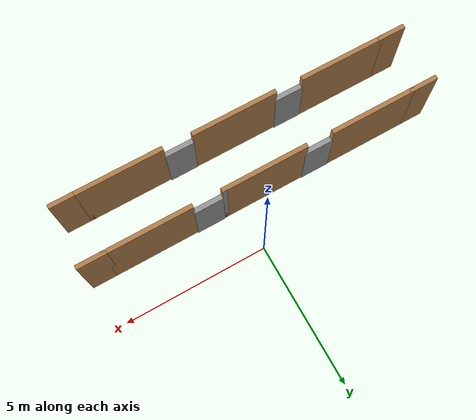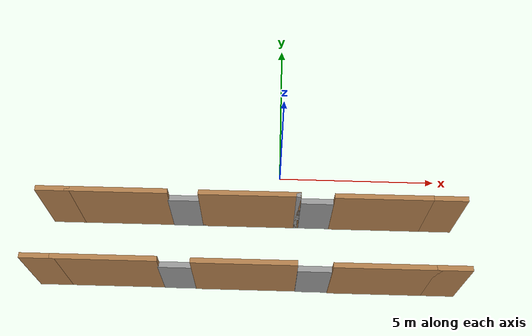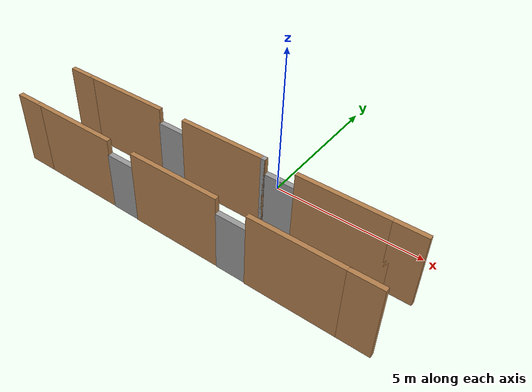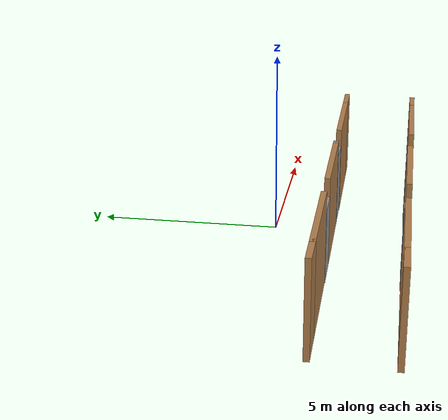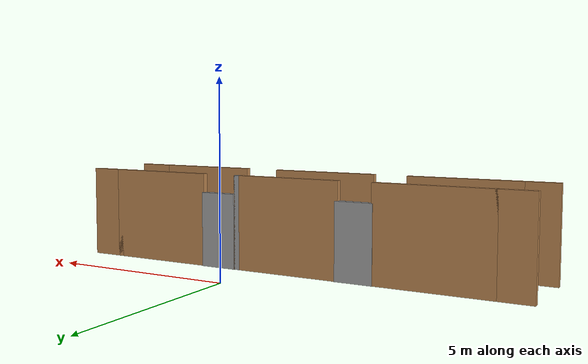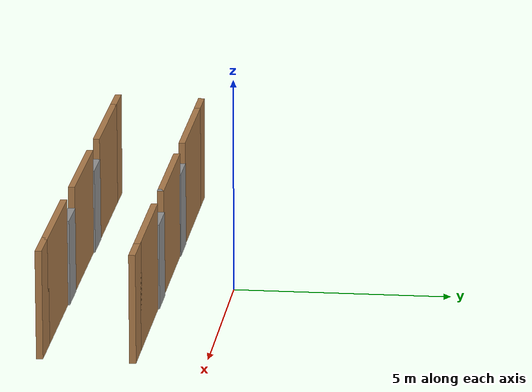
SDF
<?xml version='1.0'?>
<sdf version='1.6'>
  <model name='corridor_symetric'>
    <pose frame=''>-0.925 -2.65 0 0 -0 0</pose>
    <link name='Door_0'>
      <collision name='Door_0_Collision'>
        <geometry>
          <box>
            <size>1 0.17 2</size>
          </box>
        </geometry>
        <pose frame=''>0 0 1 0 -0 0</pose>
      </collision>
      <visual name='Door_0_Visual'>
        <pose frame=''>0 0 1 0 -0 0</pose>
        <geometry>
          <box>
            <size>1 0.17 2</size>
          </box>
        </geometry>
        <material>
          <script>
            <uri>file://media/materials/scripts/gazebo.material</uri>
            <name>Gazebo/Grey</name>
          </script>
        </material>
      </visual>
      <pose frame=''>-1.905 1.05 0 0 -0 0</pose>
    </link>
    <link name='Door_1'>
      <collision name='Door_1_Collision'>
        <geometry>
          <box>
            <size>1 0.17 2</size>
          </box>
        </geometry>
        <pose frame=''>0 0 1 0 -0 0</pose>
      </collision>
      <visual name='Door_1_Visual'>
        <pose frame=''>0 0 1 0 -0 0</pose>
        <geometry>
          <box>
            <size>1 0.17 2</size>
          </box>
        </geometry>
        <material>
          <script>
            <uri>file://media/materials/scripts/gazebo.material</uri>
            <name>Gazebo/Grey</name>
          </script>
        </material>
      </visual>
      <pose frame=''>2.025 1.05 0 0 -0 0</pose>
    </link>
    <link name='Door_2'>
      <collision name='Door_2_Collision'>
        <geometry>
          <box>
            <size>1 0.17 2</size>
          </box>
        </geometry>
        <pose frame=''>0 0 1 0 -0 0</pose>
      </collision>
      <visual name='Door_2_Visual'>
        <pose frame=''>0 0 1 0 -0 0</pose>
        <geometry>
          <box>
            <size>1 0.17 2</size>
          </box>
        </geometry>
        <material>
          <script>
            <uri>file://media/materials/scripts/gazebo.material</uri>
            <name>Gazebo/Grey</name>
          </script>
        </material>
      </visual>
      <pose frame=''>-2.025 -1 0 0 -0 0</pose>
    </link>
    <link name='Door_3'>
      <collision name='Door_3_Collision'>
        <geometry>
          <box>
            <size>1 0.17 2</size>
          </box>
        </geometry>
        <pose frame=''>0 0 1 0 -0 0</pose>
      </collision>
      <visual name='Door_3_Visual'>
        <pose frame=''>0 0 1 0 -0 0</pose>
        <geometry>
          <box>
            <size>1 0.17 2</size>
          </box>
        </geometry>
        <material>
          <script>
            <uri>file://media/materials/scripts/gazebo.material</uri>
            <name>Gazebo/Grey</name>
          </script>
        </material>
      </visual>
      <pose frame=''>1.935 -1.02 0 0 -0 0</pose>
    </link>
    <link name='Wall_0'>
      <collision name='Wall_0_Collision'>
        <geometry>
          <box>
            <size>3 0.15 2.5</size>
          </box>
        </geometry>
        <pose frame=''>0 0 1.25 0 -0 0</pose>
      </collision>
      <visual name='Wall_0_Visual'>
        <pose frame=''>0 0 1.25 0 -0 0</pose>
        <geometry>
          <box>
            <size>3 0.15 2.5</size>
          </box>
        </geometry>
        <material>
          <script>
            <uri>file://media/materials/scripts/gazebo.material</uri>
            <name>Gazebo/Wood</name>
          </script>
          <ambient>1 1 1 1</ambient>
        </material>
        <meta>
          <layer>0</layer>
        </meta>
      </visual>
      <pose frame=''>-3.87 1.05 0 0 -0 0</pose>
    </link>
    <link name='Wall_11'>
      <collision name='Wall_11_Collision'>
        <geometry>
          <box>
            <size>3 0.15 2.5</size>
          </box>
        </geometry>
        <pose frame=''>0 0 1.25 0 -0 0</pose>
      </collision>
      <visual name='Wall_11_Visual'>
        <pose frame=''>0 0 1.25 0 -0 0</pose>
        <geometry>
          <box>
            <size>3 0.15 2.5</size>
          </box>
        </geometry>
        <material>
          <script>
            <uri>file://media/materials/scripts/gazebo.material</uri>
            <name>Gazebo/Wood</name>
          </script>
          <ambient>1 1 1 1</ambient>
        </material>
        <meta>
          <layer>0</layer>
        </meta>
      </visual>
      <pose frame=''>-0.07 -1.02 0 0 -0 0</pose>
    </link>
    <link name='Wall_14'>
      <collision name='Wall_14_Collision'>
        <geometry>
          <box>
            <size>3 0.15 2.5</size>
          </box>
        </geometry>
        <pose frame=''>0 0 1.25 0 -0 0</pose>
      </collision>
      <visual name='Wall_14_Visual'>
        <pose frame=''>0 0 1.25 0 -0 0</pose>
        <geometry>
          <box>
            <size>3 0.15 2.5</size>
          </box>
        </geometry>
        <material>
          <script>
            <uri>file://media/materials/scripts/gazebo.material</uri>
            <name>Gazebo/Wood</name>
          </script>
          <ambient>1 1 1 1</ambient>
        </material>
        <meta>
          <layer>0</layer>
        </meta>
      </visual>
      <pose frame=''>3.91 -1.05 0 0 -0 0</pose>
    </link>
    <link name='Wall_2'>
      <collision name='Wall_2_Collision'>
        <geometry>
          <box>
            <size>3 0.15 2.5</size>
          </box>
        </geometry>
        <pose frame=''>0 0 1.25 0 -0 0</pose>
      </collision>
      <visual name='Wall_2_Visual'>
        <pose frame=''>0 0 1.25 0 -0 0</pose>
        <geometry>
          <box>
            <size>3 0.15 2.5</size>
          </box>
        </geometry>
        <material>
          <script>
            <uri>file://media/materials/scripts/gazebo.material</uri>
            <name>Gazebo/Wood</name>
          </script>
          <ambient>1 1 1 1</ambient>
        </material>
        <meta>
          <layer>0</layer>
        </meta>
      </visual>
      <pose frame=''>0.02 1.04 0 0 -0 0</pose>
    </link>
    <link name='Wall_22'>
      <collision name='Wall_22_Collision'>
        <geometry>
          <box>
            <size>1 0.15 2.5</size>
          </box>
        </geometry>
        <pose frame=''>0 0 1.25 0 -0 0</pose>
      </collision>
      <visual name='Wall_22_Visual'>
        <pose frame=''>0 0 1.25 0 -0 0</pose>
        <geometry>
          <box>
            <size>1 0.15 2.5</size>
          </box>
        </geometry>
        <material>
          <script>
            <uri>file://media/materials/scripts/gazebo.material</uri>
            <name>Gazebo/Wood</name>
          </script>
          <ambient>1 1 1 1</ambient>
        </material>
        <meta>
          <layer>0</layer>
        </meta>
      </visual>
      <pose frame=''>5.84 1.03 0 0 -0 0</pose>
    </link>
    <link name='Wall_3'>
      <collision name='Wall_3_Collision'>
        <geometry>
          <box>
            <size>0.15 0.15 2.5</size>
          </box>
        </geometry>
        <pose frame=''>0 0 1.25 0 -0 0</pose>
      </collision>
      <visual name='Wall_3_Visual'>
        <pose frame=''>0 0 1.25 0 -0 0</pose>
        <geometry>
          <box>
            <size>0.15 0.15 2.5</size>
          </box>
        </geometry>
        <material>
          <script>
            <uri>file://media/materials/scripts/gazebo.material</uri>
            <name>Gazebo/Grey</name>
          </script>
          <ambient>1 1 1 1</ambient>
        </material>
        <meta>
          <layer>0</layer>
        </meta>
      </visual>
      <pose frame=''>1.445 1.04 0 0 -0 0</pose>
    </link>
    <link name='Wall_33'>
      <collision name='Wall_33_Collision'>
        <geometry>
          <box>
            <size>1 0.15 2.5</size>
          </box>
        </geometry>
        <pose frame=''>0 0 1.25 0 -0 0</pose>
      </collision>
      <visual name='Wall_33_Visual'>
        <pose frame=''>0 0 1.25 0 -0 0</pose>
        <geometry>
          <box>
            <size>1 0.15 2.5</size>
          </box>
        </geometry>
        <material>
          <script>
            <uri>file://media/materials/scripts/gazebo.material</uri>
            <name>Gazebo/Wood</name>
          </script>
          <ambient>1 1 1 1</ambient>
        </material>
        <meta>
          <layer>0</layer>
        </meta>
      </visual>
      <pose frame=''>-5.72 1.05 0 0 -0 3.14159</pose>
    </link>
    <link name='Wall_36'>
      <collision name='Wall_36_Collision'>
        <geometry>
          <box>
            <size>1 0.15 2.5</size>
          </box>
        </geometry>
        <pose frame=''>0 0 1.25 0 -0 0</pose>
      </collision>
      <visual name='Wall_36_Visual'>
        <pose frame=''>0 0 1.25 0 -0 0</pose>
        <geometry>
          <box>
            <size>1 0.15 2.5</size>
          </box>
        </geometry>
        <material>
          <script>
            <uri>file://media/materials/scripts/gazebo.material</uri>
            <name>Gazebo/Wood</name>
          </script>
          <ambient>1 1 1 1</ambient>
        </material>
        <meta>
          <layer>0</layer>
        </meta>
      </visual>
      <pose frame=''>-5.84 -1 0 0 -0 3.14159</pose>
    </link>
    <link name='Wall_38'>
      <collision name='Wall_38_Collision'>
        <geometry>
          <box>
            <size>1 0.15 2.5</size>
          </box>
        </geometry>
        <pose frame=''>0 0 1.25 0 -0 0</pose>
      </collision>
      <visual name='Wall_38_Visual'>
        <pose frame=''>0 0 1.25 0 -0 0</pose>
        <geometry>
          <box>
            <size>1 0.15 2.5</size>
          </box>
        </geometry>
        <material>
          <script>
            <uri>file://media/materials/scripts/gazebo.material</uri>
            <name>Gazebo/Wood</name>
          </script>
          <ambient>1 1 1 1</ambient>
        </material>
        <meta>
          <layer>0</layer>
        </meta>
      </visual>
      <pose frame=''>5.76 -1.05 0 0 -0 0</pose>
    </link>
    <link name='Wall_5'>
      <collision name='Wall_5_Collision'>
        <geometry>
          <box>
            <size>3 0.15 2.5</size>
          </box>
        </geometry>
        <pose frame=''>0 0 1.25 0 -0 0</pose>
      </collision>
      <visual name='Wall_5_Visual'>
        <pose frame=''>0 0 1.25 0 -0 0</pose>
        <geometry>
          <box>
            <size>3 0.15 2.5</size>
          </box>
        </geometry>
        <material>
          <script>
            <uri>file://media/materials/scripts/gazebo.material</uri>
            <name>Gazebo/Wood</name>
          </script>
          <ambient>1 1 1 1</ambient>
        </material>
        <meta>
          <layer>0</layer>
        </meta>
      </visual>
      <pose frame=''>3.99 1.03 0 0 -0 0</pose>
    </link>
    <link name='Wall_8'>
      <collision name='Wall_8_Collision'>
        <geometry>
          <box>
            <size>3 0.15 2.5</size>
          </box>
        </geometry>
        <pose frame=''>0 0 1.25 0 -0 0</pose>
      </collision>
      <visual name='Wall_8_Visual'>
        <pose frame=''>0 0 1.25 0 -0 0</pose>
        <geometry>
          <box>
            <size>3 0.15 2.5</size>
          </box>
        </geometry>
        <material>
          <script>
            <uri>file://media/materials/scripts/gazebo.material</uri>
            <name>Gazebo/Wood</name>
          </script>
          <ambient>1 1 1 1</ambient>
        </material>
        <meta>
          <layer>0</layer>
        </meta>
      </visual>
      <pose frame=''>-3.99 -1 0 0 -0 0</pose>
    </link>
    <static>1</static>
  </model>
</sdf>
